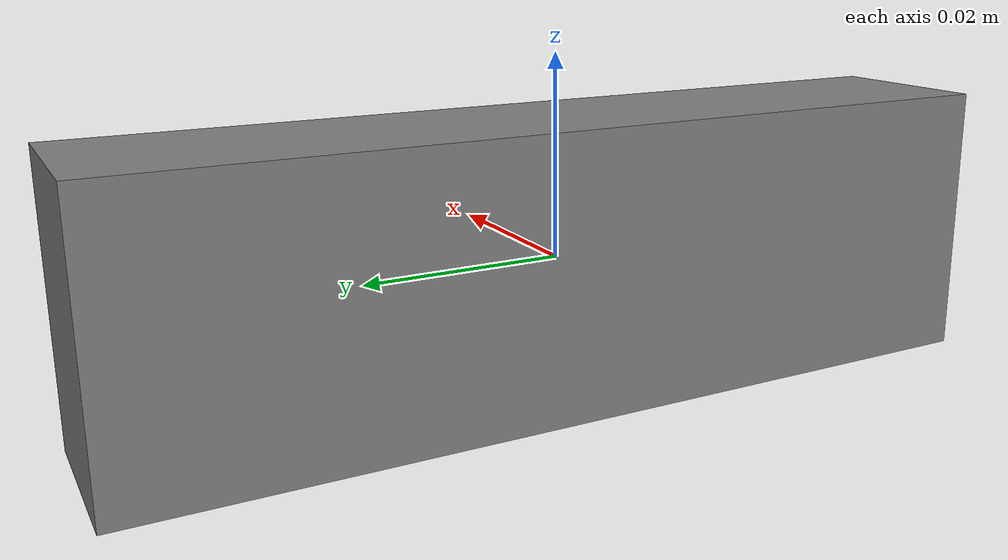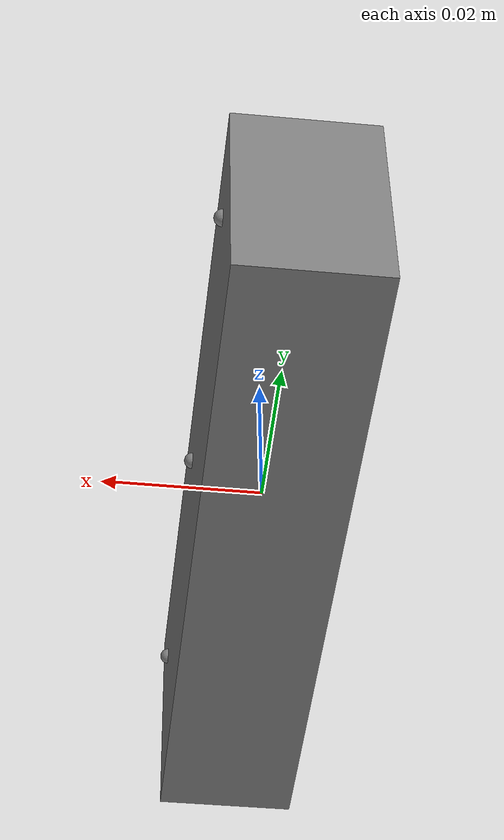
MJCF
<mujoco model="oak_d_lite">
  <compiler angle="radian" />
  <worldbody>
    <body name="mount">
      <body name="body_link">
        <inertial pos="0 0 0" mass="0.061" diaginertia="0.000046 0.000006 0.000044" />
        <geom name="enclosure" type="box" size="0.00875 0.0455 0.014" mass="0.061" />
        <body name="left_mono_link" pos="0.00875 0.0375 0.005">
          <site name="left_mono_site" pos="0 0 0" size="0.001" />
          <camera xyaxes="0 -1 0 0 0 1" name="left_mono" pos="0 0 0" fovy="72.91" resolution="640 400" />
        </body>
        <body name="rgb_link" pos="0.00875 0 0.005">
          <site name="rgb_site" pos="0 0 0" size="0.001" />
          <camera xyaxes="0 -1 0 0 0 1" name="rgb" pos="0 0 0" fovy="68.97" resolution="640 480" />
        </body>
        <body name="right_mono_link" pos="0.00875 -0.0375 0.005">
          <site name="right_mono_site" pos="0 0 0" size="0.001" />
          <camera xyaxes="0 -1 0 0 0 1" name="right_mono" pos="0 0 0" fovy="72.91" resolution="640 400" />
        </body>
        <body name="stereo_center_link" pos="0.00875 0 0.005">
          <site name="stereo_center_site" pos="0 0 0" size="0.001" />
          <camera xyaxes="0 -1 0 0 0 1" name="depth" pos="0 0 0" fovy="72.91" resolution="640 400" />
        </body>
        <body name="imu_link">
          <site name="imu_site" pos="0 0 0" size="0.001" />
        </body>
      </body>
    </body>
  </worldbody>
  <sensor>
    <accelerometer name="accelerometer" site="imu_site" />
    <gyro name="gyroscope" site="imu_site" />
    <framequat name="imu_orientation" objtype="site" objname="imu_site" />
  </sensor>
</mujoco>
